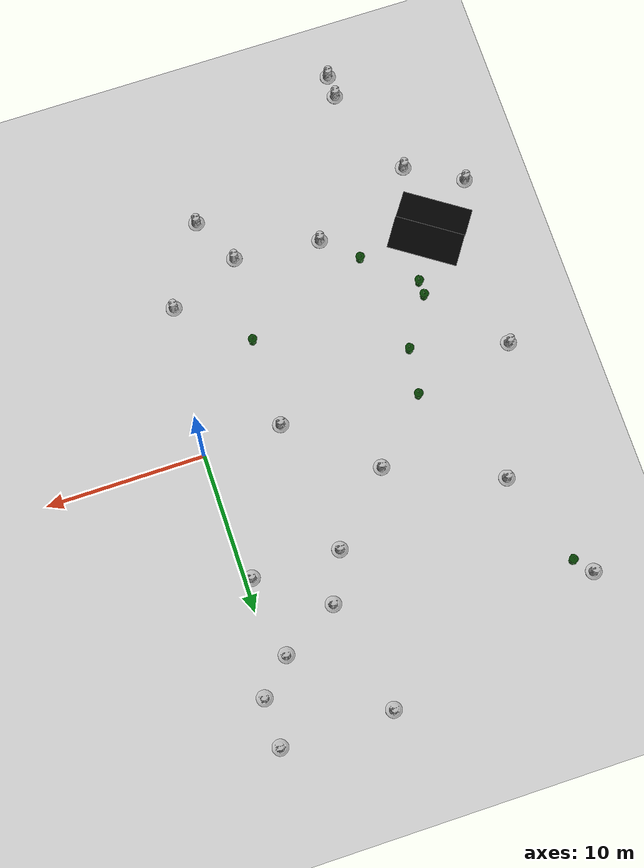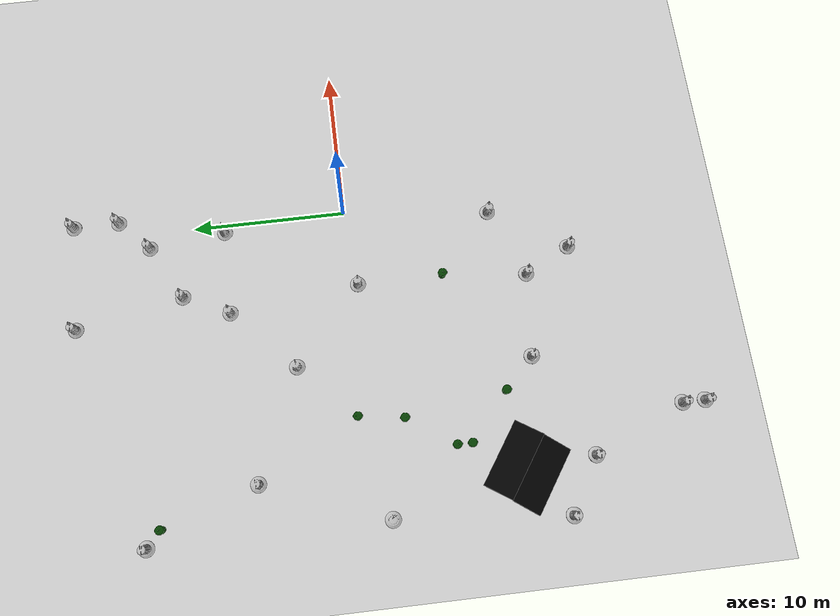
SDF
<sdf version="1.4">
 <world name="default">
  <model name="igvc_basic_ground">
   <static>1</static>
   <link name="link">
    <collision name="collision">
     <geometry><plane><normal>0 0 1</normal><size>50 50</size></plane></geometry>
     <surface><friction><ode><mu>100</mu><mu2>50</mu2></ode></friction></surface>
    </collision>
    <visual name="visual">
     <cast_shadows>0</cast_shadows>
     <geometry><plane><normal>0 0 1</normal><size>50 50</size></plane></geometry>
     <material>
      <script>
       <uri>model://igvc_basic_ground/materials/scripts</uri>
       <uri>model://igvc_basic_ground/materials/textures</uri>
       <name>igvc_basic_ground/Image</name>
      </script>
     </material>
    </visual>
    <velocity_decay><linear>0</linear><angular>0</angular></velocity_decay>
   </link>
  </model>
  <model name="ramp1_up">
   <static>true</static>
   <pose>-18.4 -10.4 0.2 0.2612 0 -0.6</pose>
   <link name="link">
    <collision name="collision"><geometry><box><size>1 0.5 .1</size></box></geometry></collision>
    <visual name="visual">
     <geometry><box><size>4.5 2.0 .1</size></box></geometry>
     <material>
      <ambient>0 0 0 0</ambient>
      <diffuse>0 0 0 0</diffuse>
      <specular>0 0 0 0</specular>
      <emissive>1 1 1 1</emissive>
     </material>
    </visual>
   </link>
  </model>
  <model name="ramp1_down">
   <static>true</static>
   <pose>-17.3 -8.8414 0.2 0.2612 0 2.5416</pose>
   <link name="link">
    <collision name="collision"><geometry><box><size>1 0.5 .1</size></box></geometry></collision>
    <visual name="visual">
     <geometry><box><size>4.5 2.0 .1</size></box></geometry>
     <material>
      <ambient>0 0 0 0</ambient>
      <diffuse>0 0 0 0</diffuse>
      <specular>0 0 0 0</specular>
      <emissive>1 1 1 1</emissive>
     </material>
    </visual>
   </link>
  </model>
  <model name="Construction Barrel">
   <link name="link">
    <inertial>
     <pose>0 0 0.4 0 -0 0</pose>
     <mass>500</mass>
     <inertia><ixx>51.2096</ixx><iyy>51.2096</iyy><izz>25</izz><ixy>0</ixy><ixz>0</ixz><iyz>0</iyz></inertia>
    </inertial>
    <collision name="collision">
     <geometry><mesh><uri>model://construction_barrel/meshes/construction_barrel.dae</uri></mesh></geometry>
    </collision>
    <visual name="visual">
     <geometry><mesh><uri>model://construction_barrel/meshes/construction_barrel.dae</uri></mesh></geometry>
    </visual>
    <velocity_decay><linear>0</linear><angular>0</angular></velocity_decay>
   </link>
   <pose>-15.0002 -21.4499 -2e-06 2e-06 4e-06 -0.002846</pose>
   <static>0</static>
  </model>
  <model name="Construction Barrel_0">
   <link name="link">
    <inertial>
     <pose>0 0 0.4 0 -0 0</pose>
     <mass>500</mass>
     <inertia><ixx>51.2096</ixx><iyy>51.2096</iyy><izz>25</izz><ixy>0</ixy><ixz>0</ixz><iyz>0</iyz></inertia>
    </inertial>
    <collision name="collision">
     <geometry><mesh><uri>model://construction_barrel/meshes/construction_barrel.dae</uri></mesh></geometry>
    </collision>
    <visual name="visual">
     <geometry><mesh><uri>model://construction_barrel/meshes/construction_barrel.dae</uri></mesh></geometry>
    </visual>
    <velocity_decay><linear>0</linear><angular>0</angular></velocity_decay>
   </link>
   <pose>-15.0002 -19.9984 -2e-06 0 -6e-06 -0.00292</pose>
   <static>0</static>
  </model>
  <model name="Construction Barrel_1">
   <link name="link">
    <inertial>
     <pose>0 0 0.4 0 -0 0</pose>
     <mass>500</mass>
     <inertia><ixx>51.2096</ixx><iyy>51.2096</iyy><izz>25</izz><ixy>0</ixy><ixz>0</ixz><iyz>0</iyz></inertia>
    </inertial>
    <collision name="collision">
     <geometry><mesh><uri>model://construction_barrel/meshes/construction_barrel.dae</uri></mesh></geometry>
    </collision>
    <visual name="visual">
     <geometry><mesh><uri>model://construction_barrel/meshes/construction_barrel.dae</uri></mesh></geometry>
    </visual>
    <velocity_decay><linear>0</linear><angular>0</angular></velocity_decay>
   </link>
   <pose>-17.5785 -13.9984 -2e-06 4e-06 6e-06 -0.002915</pose>
   <static>0</static>
  </model>
  <model name="Construction Barrel_2">
   <link name="link">
    <inertial>
     <pose>0 0 0.4 0 -0 0</pose>
     <mass>500</mass>
     <inertia><ixx>51.2096</ixx><iyy>51.2096</iyy><izz>25</izz><ixy>0</ixy><ixz>0</ixz><iyz>0</iyz></inertia>
    </inertial>
    <collision name="collision">
     <geometry><mesh><uri>model://construction_barrel/meshes/construction_barrel.dae</uri></mesh></geometry>
    </collision>
    <visual name="visual">
     <geometry><mesh><uri>model://construction_barrel/meshes/construction_barrel.dae</uri></mesh></geometry>
    </visual>
    <velocity_decay><linear>0</linear><angular>0</angular></velocity_decay>
   </link>
   <pose>-21.0002 -11.9984 -2e-06 2e-06 -4e-06 -0.0029</pose>
   <static>0</static>
  </model>
  <model name="first_2015_trash_can_1">
   <link name="link">
    <inertial>
     <pose>0 0 0.3683 0 -0 0</pose>
     <mass>4.83076</mass>
     <inertia>
      <ixx>0.281534</ixx>
      <ixy>0</ixy>
      <ixz>0</ixz>
      <iyy>0.281534</iyy>
      <iyz>0</iyz>
      <izz>0.126223</izz>
     </inertia>
    </inertial>
    <visual name="visual">
     <geometry><mesh><uri>model://first_2015_trash_can/meshes/trash_can.dae</uri></mesh></geometry>
    </visual>
    <collision name="collision">
     <geometry><mesh><uri>model://first_2015_trash_can/meshes/trash_can.dae</uri></mesh></geometry>
    </collision>
    <velocity_decay><linear>0</linear><angular>0</angular></velocity_decay>
   </link>
   <pose>-15.9994 -6.40827 -1e-06 -3e-06 1.7e-05 -0.002337</pose>
   <static>0</static>
  </model>
  <model name="first_2015_trash_can_2">
   <link name="link">
    <inertial>
     <pose>0 0 0.3683 0 -0 0</pose>
     <mass>4.83076</mass>
     <inertia>
      <ixx>0.281534</ixx>
      <ixy>0</ixy>
      <ixz>0</ixz>
      <iyy>0.281534</iyy>
      <iyz>0</iyz>
      <izz>0.126223</izz>
     </inertia>
    </inertial>
    <visual name="visual">
     <geometry><mesh><uri>model://first_2015_trash_can/meshes/trash_can.dae</uri></mesh></geometry>
    </visual>
    <collision name="collision">
     <geometry><mesh><uri>model://first_2015_trash_can/meshes/trash_can.dae</uri></mesh></geometry>
    </collision>
    <velocity_decay><linear>0</linear><angular>0</angular></velocity_decay>
   </link>
   <pose>-15.9995 -5.46429 -5e-06 2e-06 2e-05 -0.002052</pose>
   <static>0</static>
  </model>
  <model name="Construction Barrel_4">
   <link name="link">
    <inertial>
     <pose>0 0 0.4 0 -0 0</pose>
     <mass>500</mass>
     <inertia><ixx>51.2096</ixx><iyy>51.2096</iyy><izz>25</izz><ixy>0</ixy><ixz>0</ixz><iyz>0</iyz></inertia>
    </inertial>
    <collision name="collision">
     <geometry><mesh><uri>model://construction_barrel/meshes/construction_barrel.dae</uri></mesh></geometry>
    </collision>
    <visual name="visual">
     <geometry><mesh><uri>model://construction_barrel/meshes/construction_barrel.dae</uri></mesh></geometry>
    </visual>
    <velocity_decay><linear>0</linear><angular>0</angular></velocity_decay>
   </link>
   <pose>-20.0002 -0.998476 -3e-06 4e-06 1e-05 -0.002729</pose>
   <static>0</static>
  </model>
  <model name="Construction Barrel_5">
   <link name="link">
    <inertial>
     <pose>0 0 0.4 0 -0 0</pose>
     <mass>500</mass>
     <inertia><ixx>51.2096</ixx><iyy>51.2096</iyy><izz>25</izz><ixy>0</ixy><ixz>0</ixz><iyz>0</iyz></inertia>
    </inertial>
    <collision name="collision">
     <geometry><mesh><uri>model://construction_barrel/meshes/construction_barrel.dae</uri></mesh></geometry>
    </collision>
    <visual name="visual">
     <geometry><mesh><uri>model://construction_barrel/meshes/construction_barrel.dae</uri></mesh></geometry>
    </visual>
    <velocity_decay><linear>0</linear><angular>0</angular></velocity_decay>
   </link>
   <pose>-17.0002 7.00149 -2e-06 1e-06 -4e-06 -0.002674</pose>
   <static>0</static>
  </model>
  <model name="Construction Barrel_6">
   <link name="link">
    <inertial>
     <pose>0 0 0.4 0 -0 0</pose>
     <mass>500</mass>
     <inertia><ixx>51.2096</ixx><iyy>51.2096</iyy><izz>25</izz><ixy>0</ixy><ixz>0</ixz><iyz>0</iyz></inertia>
    </inertial>
    <collision name="collision">
     <geometry><mesh><uri>model://construction_barrel/meshes/construction_barrel.dae</uri></mesh></geometry>
    </collision>
    <visual name="visual">
     <geometry><mesh><uri>model://construction_barrel/meshes/construction_barrel.dae</uri></mesh></geometry>
    </visual>
    <velocity_decay><linear>0</linear><angular>0</angular></velocity_decay>
   </link>
   <pose>-20.0002 14.0015 -2e-06 -1e-06 -7e-06 -0.002614</pose>
   <static>0</static>
  </model>
  <model name="first_2015_trash_can_3">
   <link name="link">
    <inertial>
     <pose>0 0 0.3683 0 -0 0</pose>
     <mass>4.83076</mass>
     <inertia>
      <ixx>0.281534</ixx>
      <ixy>0</ixy>
      <ixz>0</ixz>
      <iyy>0.281534</iyy>
      <iyz>0</iyz>
      <izz>0.126223</izz>
     </inertia>
    </inertial>
    <visual name="visual">
     <geometry><mesh><uri>model://first_2015_trash_can/meshes/trash_can.dae</uri></mesh></geometry>
    </visual>
    <collision name="collision">
     <geometry><mesh><uri>model://first_2015_trash_can/meshes/trash_can.dae</uri></mesh></geometry>
    </collision>
    <velocity_decay><linear>0</linear><angular>0</angular></velocity_decay>
   </link>
   <pose>-18.9996 12.9999 -4e-06 -4e-06 2e-06 -0.002012</pose>
   <static>0</static>
  </model>
  <model name="Construction Barrel_7">
   <link name="link">
    <inertial>
     <pose>0 0 0.4 0 -0 0</pose>
     <mass>500</mass>
     <inertia><ixx>51.2096</ixx><iyy>51.2096</iyy><izz>25</izz><ixy>0</ixy><ixz>0</ixz><iyz>0</iyz></inertia>
    </inertial>
    <collision name="collision">
     <geometry><mesh><uri>model://construction_barrel/meshes/construction_barrel.dae</uri></mesh></geometry>
    </collision>
    <visual name="visual">
     <geometry><mesh><uri>model://construction_barrel/meshes/construction_barrel.dae</uri></mesh></geometry>
    </visual>
    <velocity_decay><linear>0</linear><angular>0</angular></velocity_decay>
   </link>
   <pose>-6.00017 18.0014 -0 0 -0 -0.002471</pose>
   <static>0</static>
  </model>
  <model name="Construction Barrel_10">
   <link name="link">
    <inertial>
     <pose>0 0 0.4 0 -0 0</pose>
     <mass>500</mass>
     <inertia><ixx>51.2096</ixx><iyy>51.2096</iyy><izz>25</izz><ixy>0</ixy><ixz>0</ixz><iyz>0</iyz></inertia>
    </inertial>
    <collision name="collision">
     <geometry><mesh><uri>model://construction_barrel/meshes/construction_barrel.dae</uri></mesh></geometry>
    </collision>
    <visual name="visual">
     <geometry><mesh><uri>model://construction_barrel/meshes/construction_barrel.dae</uri></mesh></geometry>
    </visual>
    <velocity_decay><linear>0</linear><angular>0</angular></velocity_decay>
   </link>
   <pose>0.994843 17.9958 2e-06 1e-06 3e-06 0.057181</pose>
   <static>0</static>
  </model>
  <model name="Construction Barrel_12">
   <link name="link">
    <inertial>
     <pose>0 0 0.4 0 -0 0</pose>
     <mass>500</mass>
     <inertia><ixx>51.2096</ixx><iyy>51.2096</iyy><izz>25</izz><ixy>0</ixy><ixz>0</ixz><iyz>0</iyz></inertia>
    </inertial>
    <collision name="collision">
     <geometry><mesh><uri>model://construction_barrel/meshes/construction_barrel.dae</uri></mesh></geometry>
    </collision>
    <visual name="visual">
     <geometry><mesh><uri>model://construction_barrel/meshes/construction_barrel.dae</uri></mesh></geometry>
    </visual>
    <velocity_decay><linear>0</linear><angular>0</angular></velocity_decay>
   </link>
   <pose>0.99985 15.0012 -0 0 -0 -0.002118</pose>
   <static>0</static>
  </model>
  <model name="Construction Barrel_14">
   <link name="link">
    <inertial>
     <pose>0 0 0.4 0 -0 0</pose>
     <mass>500</mass>
     <inertia><ixx>51.2096</ixx><iyy>51.2096</iyy><izz>25</izz><ixy>0</ixy><ixz>0</ixz><iyz>0</iyz></inertia>
    </inertial>
    <collision name="collision">
     <geometry><mesh><uri>model://construction_barrel/meshes/construction_barrel.dae</uri></mesh></geometry>
    </collision>
    <visual name="visual">
     <geometry><mesh><uri>model://construction_barrel/meshes/construction_barrel.dae</uri></mesh></geometry>
    </visual>
    <velocity_decay><linear>0</linear><angular>0</angular></velocity_decay>
   </link>
   <pose>-4.58992 11.0011 -0 1e-06 1e-06 -0.001914</pose>
   <static>0</static>
  </model>
  <model name="Construction Barrel_15">
   <link name="link">
    <inertial>
     <pose>0 0 0.4 0 -0 0</pose>
     <mass>500</mass>
     <inertia><ixx>51.2096</ixx><iyy>51.2096</iyy><izz>25</izz><ixy>0</ixy><ixz>0</ixz><iyz>0</iyz></inertia>
    </inertial>
    <collision name="collision">
     <geometry><mesh><uri>model://construction_barrel/meshes/construction_barrel.dae</uri></mesh></geometry>
    </collision>
    <visual name="visual">
     <geometry><mesh><uri>model://construction_barrel/meshes/construction_barrel.dae</uri></mesh></geometry>
    </visual>
    <velocity_decay><linear>0</linear><angular>0</angular></velocity_decay>
   </link>
   <pose>-1.00013 13.0011 -2e-06 -1e-06 -7e-06 -0.001887</pose>
   <static>0</static>
  </model>
  <model name="Construction Barrel_16">
   <link name="link">
    <inertial>
     <pose>0 0 0.4 0 -0 0</pose>
     <mass>500</mass>
     <inertia><ixx>51.2096</ixx><iyy>51.2096</iyy><izz>25</izz><ixy>0</ixy><ixz>0</ixz><iyz>0</iyz></inertia>
    </inertial>
    <collision name="collision">
     <geometry><mesh><uri>model://construction_barrel/meshes/construction_barrel.dae</uri></mesh></geometry>
    </collision>
    <visual name="visual">
     <geometry><mesh><uri>model://construction_barrel/meshes/construction_barrel.dae</uri></mesh></geometry>
    </visual>
    <velocity_decay><linear>0</linear><angular>0</angular></velocity_decay>
   </link>
   <pose>-10.0001 4.001 -0 0 -0 -0.001782</pose>
   <static>0</static>
  </model>
  <model name="Construction Barrel_17">
   <link name="link">
    <inertial>
     <pose>0 0 0.4 0 -0 0</pose>
     <mass>500</mass>
     <inertia><ixx>51.2096</ixx><iyy>51.2096</iyy><izz>25</izz><ixy>0</ixy><ixz>0</ixz><iyz>0</iyz></inertia>
    </inertial>
    <collision name="collision">
     <geometry><mesh><uri>model://construction_barrel/meshes/construction_barrel.dae</uri></mesh></geometry>
    </collision>
    <visual name="visual">
     <geometry><mesh><uri>model://construction_barrel/meshes/construction_barrel.dae</uri></mesh></geometry>
    </visual>
    <velocity_decay><linear>0</linear><angular>0</angular></velocity_decay>
   </link>
   <pose>-6.00012 8.00097 -0 2.06795e-25 -1e-06 -0.001733</pose>
   <static>0</static>
  </model>
  <model name="Construction Barrel_18">
   <link name="link">
    <inertial>
     <pose>0 0 0.4 0 -0 0</pose>
     <mass>500</mass>
     <inertia><ixx>51.2096</ixx><iyy>51.2096</iyy><izz>25</izz><ixy>0</ixy><ixz>0</ixz><iyz>0</iyz></inertia>
    </inertial>
    <collision name="collision">
     <geometry><mesh><uri>model://construction_barrel/meshes/construction_barrel.dae</uri></mesh></geometry>
    </collision>
    <visual name="visual">
     <geometry><mesh><uri>model://construction_barrel/meshes/construction_barrel.dae</uri></mesh></geometry>
    </visual>
    <velocity_decay><linear>0</linear><angular>0</angular></velocity_decay>
   </link>
   <pose>-11.0001 -10.9991 -0 1e-06 1e-06 -0.001678</pose>
   <static>0</static>
  </model>
  <model name="first_2015_trash_can_6">
   <link name="link">
    <inertial>
     <pose>0 0 0.3683 0 -0 0</pose>
     <mass>4.83076</mass>
     <inertia>
      <ixx>0.281534</ixx>
      <ixy>0</ixy>
      <ixz>0</ixz>
      <iyy>0.281534</iyy>
      <iyz>0</iyz>
      <izz>0.126223</izz>
     </inertia>
    </inertial>
    <visual name="visual">
     <geometry><mesh><uri>model://first_2015_trash_can/meshes/trash_can.dae</uri></mesh></geometry>
    </visual>
    <collision name="collision">
     <geometry><mesh><uri>model://first_2015_trash_can/meshes/trash_can.dae</uri></mesh></geometry>
    </collision>
    <velocity_decay><linear>0</linear><angular>0</angular></velocity_decay>
   </link>
   <pose>-12.9997 -9.00009 -1e-06 7e-06 5e-06 -0.001113</pose>
   <static>0</static>
  </model>
  <model name="first_2015_trash_can_7">
   <link name="link">
    <inertial>
     <pose>0 0 0.3683 0 -0 0</pose>
     <mass>4.83076</mass>
     <inertia>
      <ixx>0.281534</ixx>
      <ixy>0</ixy>
      <ixz>0</ixz>
      <iyy>0.281534</iyy>
      <iyz>0</iyz>
      <izz>0.126223</izz>
     </inertia>
    </inertial>
    <visual name="visual">
     <geometry><mesh><uri>model://first_2015_trash_can/meshes/trash_can.dae</uri></mesh></geometry>
    </visual>
    <collision name="collision">
     <geometry><mesh><uri>model://first_2015_trash_can/meshes/trash_can.dae</uri></mesh></geometry>
    </collision>
    <velocity_decay><linear>0</linear><angular>0</angular></velocity_decay>
   </link>
   <pose>-13.9997 -2.44868 -2e-06 2e-06 1.4e-05 -0.001333</pose>
   <static>0</static>
  </model>
  <model name="first_2015_trash_can_8">
   <link name="link">
    <inertial>
     <pose>0 0 0.3683 0 -0 0</pose>
     <mass>4.83076</mass>
     <inertia>
      <ixx>0.281534</ixx>
      <ixy>0</ixy>
      <ixz>0</ixz>
      <iyy>0.281534</iyy>
      <iyz>0</iyz>
      <izz>0.126223</izz>
     </inertia>
    </inertial>
    <visual name="visual">
     <geometry><mesh><uri>model://first_2015_trash_can/meshes/trash_can.dae</uri></mesh></geometry>
    </visual>
    <collision name="collision">
     <geometry><mesh><uri>model://first_2015_trash_can/meshes/trash_can.dae</uri></mesh></geometry>
    </collision>
    <velocity_decay><linear>0</linear><angular>0</angular></velocity_decay>
   </link>
   <pose>-13.5831 0.462172 -2e-06 1.3e-05 -3e-06 -0.000809</pose>
   <static>0</static>
  </model>
  <model name="first_2015_trash_can_9">
   <link name="link">
    <inertial>
     <pose>0 0 0.3683 0 -0 0</pose>
     <mass>4.83076</mass>
     <inertia>
      <ixx>0.281534</ixx>
      <ixy>0</ixy>
      <ixz>0</ixz>
      <iyy>0.281534</iyy>
      <iyz>0</iyz>
      <izz>0.126223</izz>
     </inertia>
    </inertial>
    <visual name="visual">
     <geometry><mesh><uri>model://first_2015_trash_can/meshes/trash_can.dae</uri></mesh></geometry>
    </visual>
    <collision name="collision">
     <geometry><mesh><uri>model://first_2015_trash_can/meshes/trash_can.dae</uri></mesh></geometry>
    </collision>
    <velocity_decay><linear>0</linear><angular>0</angular></velocity_decay>
   </link>
   <pose>-4.99977 -6.00006 -6e-06 -5e-06 1e-06 -0.000997</pose>
   <static>0</static>
  </model>
  <model name="Construction Barrel_19">
   <link name="link">
    <inertial>
     <pose>0 0 0.4 0 -0 0</pose>
     <mass>500</mass>
     <inertia><ixx>51.2096</ixx><iyy>51.2096</iyy><izz>25</izz><ixy>0</ixy><ixz>0</ixz><iyz>0</iyz></inertia>
    </inertial>
    <collision name="collision">
     <geometry><mesh><uri>model://construction_barrel/meshes/construction_barrel.dae</uri></mesh></geometry>
    </collision>
    <visual name="visual">
     <geometry><mesh><uri>model://construction_barrel/meshes/construction_barrel.dae</uri></mesh></geometry>
    </visual>
    <velocity_decay><linear>0</linear><angular>0</angular></velocity_decay>
   </link>
   <pose>-0.465667 8.00078 -2e-06 -1e-06 -7e-06 -0.001395</pose>
   <static>0</static>
  </model>
  <model name="Construction Barrel_23">
   <link name="link">
    <inertial>
     <pose>0 0 0.4 0 -0 0</pose>
     <mass>500</mass>
     <inertia><ixx>51.2096</ixx><iyy>51.2096</iyy><izz>25</izz><ixy>0</ixy><ixz>0</ixz><iyz>0</iyz></inertia>
    </inertial>
    <collision name="collision">
     <geometry><mesh><uri>model://construction_barrel/meshes/construction_barrel.dae</uri></mesh></geometry>
    </collision>
    <visual name="visual">
     <geometry><mesh><uri>model://construction_barrel/meshes/construction_barrel.dae</uri></mesh></geometry>
    </visual>
    <velocity_decay><linear>0</linear><angular>0</angular></velocity_decay>
   </link>
   <pose>-1.00008 -9.59769 -2e-06 -1e-06 -7e-06 -0.001058</pose>
   <static>0</static>
  </model>
  <model name="Construction Barrel_24">
   <link name="link">
    <inertial>
     <pose>0 0 0.4 0 -0 0</pose>
     <mass>500</mass>
     <inertia><ixx>51.2096</ixx><iyy>51.2096</iyy><izz>25</izz><ixy>0</ixy><ixz>0</ixz><iyz>0</iyz></inertia>
    </inertial>
    <collision name="collision">
     <geometry><mesh><uri>model://construction_barrel/meshes/construction_barrel.dae</uri></mesh></geometry>
    </collision>
    <visual name="visual">
     <geometry><mesh><uri>model://construction_barrel/meshes/construction_barrel.dae</uri></mesh></geometry>
    </visual>
    <velocity_decay><linear>0</linear><angular>0</angular></velocity_decay>
   </link>
   <pose>-4.00007 -14.5254 -2e-06 1e-06 -4e-06 -0.00099</pose>
   <static>0</static>
  </model>
  <model name="Construction Barrel_25">
   <link name="link">
    <inertial>
     <pose>0 0 0.4 0 -0 0</pose>
     <mass>500</mass>
     <inertia><ixx>51.2096</ixx><iyy>51.2096</iyy><izz>25</izz><ixy>0</ixy><ixz>0</ixz><iyz>0</iyz></inertia>
    </inertial>
    <collision name="collision">
     <geometry><mesh><uri>model://construction_barrel/meshes/construction_barrel.dae</uri></mesh></geometry>
    </collision>
    <visual name="visual">
     <geometry><mesh><uri>model://construction_barrel/meshes/construction_barrel.dae</uri></mesh></geometry>
    </visual>
    <velocity_decay><linear>0</linear><angular>0</angular></velocity_decay>
   </link>
   <pose>-5.54645 -11.5209 -4e-06 1e-06 -9e-06 -0.000968</pose>
   <static>0</static>
  </model>
  <model name="Construction Barrel_31">
   <link name="link">
    <inertial>
     <pose>0 0 0.4 0 -0 0</pose>
     <mass>500</mass>
     <inertia><ixx>51.2096</ixx><iyy>51.2096</iyy><izz>25</izz><ixy>0</ixy><ixz>0</ixz><iyz>0</iyz></inertia>
    </inertial>
    <collision name="collision">
     <geometry><mesh><uri>model://construction_barrel/meshes/construction_barrel.dae</uri></mesh></geometry>
    </collision>
    <visual name="visual">
     <geometry><mesh><uri>model://construction_barrel/meshes/construction_barrel.dae</uri></mesh></geometry>
    </visual>
    <velocity_decay><linear>0</linear><angular>0</angular></velocity_decay>
   </link>
   <pose>-5.00005 -0.439745 2e-06 -3e-06 -3e-06 -0.000654</pose>
   <static>0</static>
  </model>
 </world>
</sdf>
